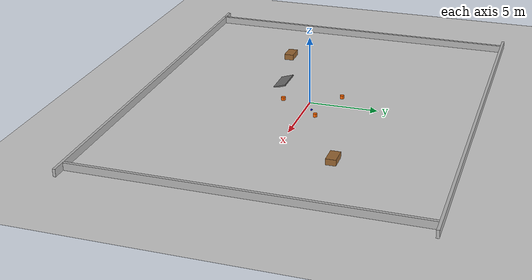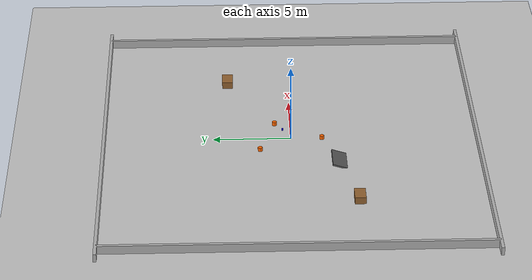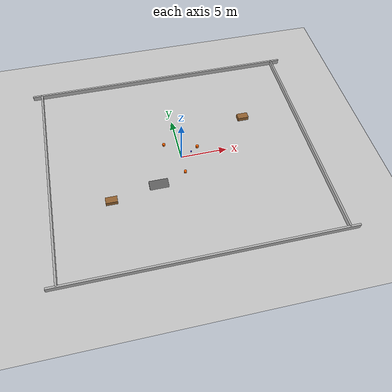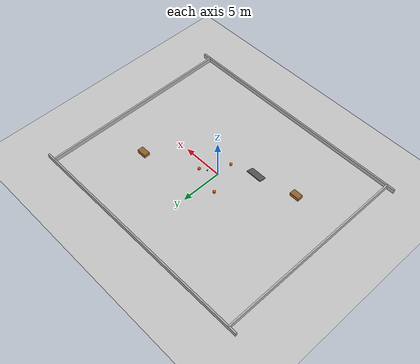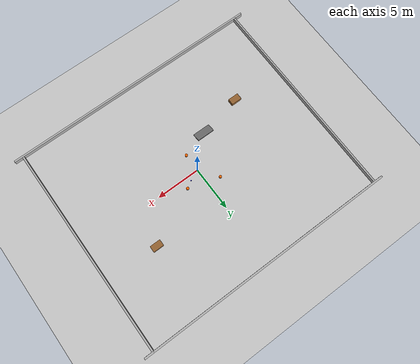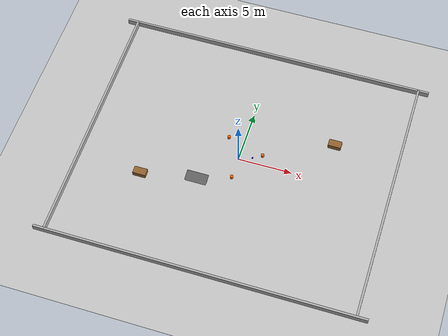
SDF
<?xml version="1.0"?>
<sdf version="1.6">
  <world name="limo_world">

    <!-- ===== Physics ===== -->
    <physics type="ode">
      <max_step_size>0.001</max_step_size>
      <real_time_update_rate>1000</real_time_update_rate>
    </physics>

    <!-- ===== Lighting ===== -->
    <scene>
      <ambient>0.45 0.45 0.45 1</ambient>
      <background>0.7 0.7 0.8 1</background>
    </scene>

    <!-- ===== Ground + Sun ===== -->
    <include><uri>model://ground_plane</uri></include>
    <include><uri>model://sun</uri></include>

    <!-- ===============================
         WIDE OPEN BOUNDARIES
         =============================== -->

    <model name="boundary_back">
      <pose>0 -12 0 0 0 0</pose>
      <static>true</static>
      <link name="link">
        <visual name="visual"><geometry><box><size>30 0.2 1</size></box></geometry></visual>
        <collision name="collision"><geometry><box><size>30 0.2 1</size></box></geometry></collision>
      </link>
    </model>

    <model name="boundary_front">
      <pose>0 12 0 0 0 0</pose>
      <static>true</static>
      <link name="link">
        <visual name="visual"><geometry><box><size>30 0.2 1</size></box></geometry></visual>
        <collision name="collision"><geometry><box><size>30 0.2 1</size></box></geometry></collision>
      </link>
    </model>

    <model name="boundary_left">
      <pose>-14 0 0 0 0 1.57</pose>
      <static>true</static>
      <link name="link">
        <visual name="visual"><geometry><box><size>24 0.2 1</size></box></geometry></visual>
        <collision name="collision"><geometry><box><size>24 0.2 1</size></box></geometry></collision>
      </link>
    </model>

    <model name="boundary_right">
      <pose>14 0 0 0 0 1.57</pose>
      <static>true</static>
      <link name="link">
        <visual name="visual"><geometry><box><size>24 0.2 1</size></box></geometry></visual>
        <collision name="collision"><geometry><box><size>24 0.2 1</size></box></geometry></collision>
      </link>
    </model>

    <!-- ==========================
         CONES
         ========================== -->

    <model name="cone1">
      <pose>2 1 0 0 0 0</pose>
      <static>true</static>
      <link name="link">
        <visual name="visual">
          <geometry><cylinder><radius>0.15</radius><length>0.4</length></cylinder></geometry>
          <material><ambient>1 0.4 0 1</ambient></material>
        </visual>
        <collision name="collision">
          <geometry><cylinder><radius>0.15</radius><length>0.4</length></cylinder></geometry>
        </collision>
      </link>
    </model>

    <model name="cone2">
      <pose>-1.5 2 0 0 0 0</pose>
      <static>true</static>
      <link name="link">
        <visual name="visual">
          <geometry><cylinder><radius>0.15</radius><length>0.4</length></cylinder></geometry>
          <material><ambient>1 0.4 0 1</ambient></material>
        </visual>
        <collision name="collision">
          <geometry><cylinder><radius>0.15</radius><length>0.4</length></cylinder></geometry>
        </collision>
      </link>
    </model>

    <model name="cone3">
      <pose>0 -2 0 0 0 0</pose>
      <static>true</static>
      <link name="link">
        <visual name="visual">
          <geometry><cylinder><radius>0.15</radius><length>0.4</length></cylinder></geometry>
          <material><ambient>1 0.4 0 1</ambient></material>
        </visual>
        <collision name="collision">
          <geometry><cylinder><radius>0.15</radius><length>0.4</length></cylinder></geometry>
        </collision>
      </link>
    </model>

    <!-- ==================
         RAMP
         ================== -->
    <model name="ramp1">
      <pose>-3 -3 0 0 0 0</pose>
      <static>true</static>
      <link name="ramp_link">
        <visual name="visual">
          <geometry><box><size>2 1 0.1</size></box></geometry>
          <material><ambient>0.4 0.4 0.4 1</ambient></material>
        </visual>
        <collision name="collision">
          <geometry><box><size>2 1 0.1</size></box></geometry>
        </collision>
        <pose>0 0 0.05 0.3 0 0</pose> <!-- tilted box -->
      </link>
    </model>

    <!-- ==========================
         TABLES AS SIDE OBSTACLES
         ========================== -->

    <!-- Left table -->
    <model name="left_table">
      <pose>-8 -4 0 0 0 0</pose>
      <static>true</static>
      <link name="table_top">
        <visual name="visual">
          <geometry><box><size>1.2 0.7 0.8</size></box></geometry>
          <material><ambient>0.6 0.4 0.2 1</ambient></material>
        </visual>
        <collision name="collision"><geometry><box><size>1.2 0.7 0.8</size></box></geometry></collision>
      </link>
    </model>

    <!-- Right table -->
    <model name="right_table">
      <pose>8 4 0 0 0 0</pose>
      <static>true</static>
      <link name="table_top">
        <visual name="visual">
          <geometry><box><size>1.2 0.7 0.8</size></box></geometry>
          <material><ambient>0.6 0.4 0.2 1</ambient></material>
        </visual>
        <collision name="collision"><geometry><box><size>1.2 0.7 0.8</size></box></geometry></collision>
      </link>
    </model>

    <!-- ==========================
         PICKABLE BOX ON GROUND
         ========================== -->
    <model name="pickup_box">
      <pose>1.2 0.5 0.05 0 0 0</pose>
      <static>false</static>
      <link name="link">
        <visual name="visual">
          <geometry><box><size>0.1 0.1 0.1</size></box></geometry>
          <material><ambient>0 0 1 1</ambient></material> <!-- Blue -->
        </visual>
        <collision name="collision">
          <geometry><box><size>0.1 0.1 0.1</size></box></geometry>
        </collision>
        <inertial>
          <mass>0.1</mass>
        </inertial>
      </link>
    </model>

  </world>
</sdf>
